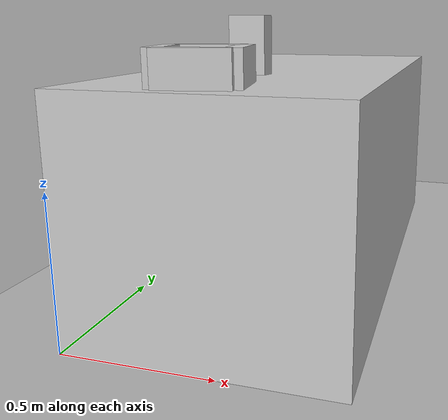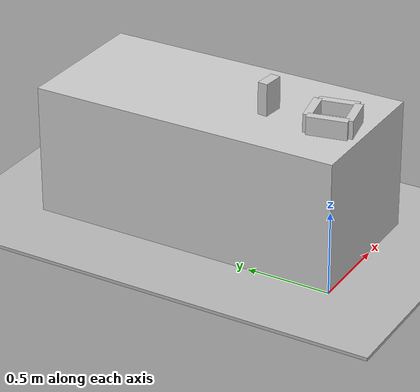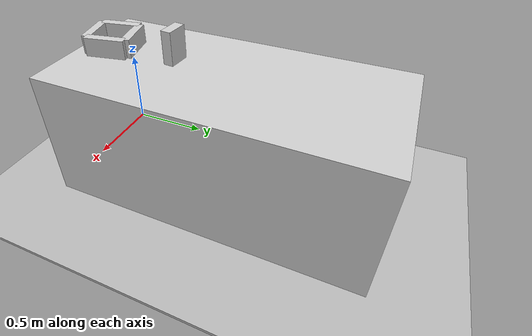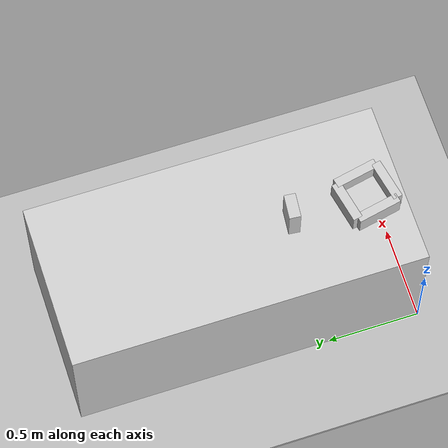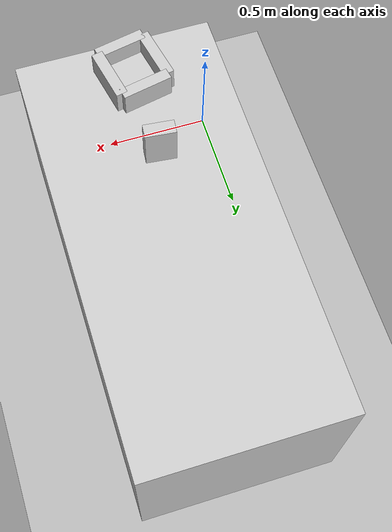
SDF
<?xml version="1.0"?>
<sdf version="1.6">
  <world name="boxing_world">
    <include>
      <pose>0 0 0 0 0 0</pose>
      <name>floor</name>
      <uri>model://floor</uri>
    </include>
    <include>
      <pose>0.44 0.94 0 0 0 0</pose>
      <name>table</name>
      <uri>model://table</uri>
    </include>
    <include>
      <pose>0.4 0.2 0.79 0 0 0.2</pose>
      <name>cardboard_box</name>
      <uri>model://cardboard_box</uri>
    </include>
    <include>
      <pose>0.4 0.6 0.79 0 0 -0.1</pose>
      <name>rice1</name>
      <uri>model://rice_box</uri>
    </include>
    <light type="directional" name="sun">
      <cast_shadows>true</cast_shadows>
      <pose>0 0 10 0 0 0</pose>
      <diffuse>0.8 0.8 0.8 1</diffuse>
      <specular>0.2 0.2 0.2 1</specular>
      <direction>0.5 0.1 -0.9</direction>
      <attenuation>
        <range>1000</range>
        <constant>0.9</constant>
        <linear>0.01</linear>
        <quadratic>0.001</quadratic>
      </attenuation>
    </light>
    <physics type="ode">
      <real_time_update_rate>333.0</real_time_update_rate>
      <max_step_size>0.003</max_step_size>
      <ode>
        <solver>
          <type>quick</type>
          <iters>100</iters>
        </solver>
        <constraints>
          <cfm>0.0001</cfm>
        </constraints>
      </ode>
    </physics>
  </world>
</sdf>

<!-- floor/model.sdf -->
<sdf version="1.6">
  <model name="floor">
    <link name="1_link">
      <collision name="1_col">
        <geometry>
          <box>
            <size>200 200 0.02</size>
          </box>
        </geometry>
      </collision>
      <visual name="1_vis">
        <geometry>
          <box>
            <size>200 200 0.02</size>
          </box>
        </geometry>
      </visual>
      <pose>0 0 -0.01 0 0 0</pose>
    </link>
    <static>true</static>
  </model>
</sdf>

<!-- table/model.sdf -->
<sdf version="1.6">
  <model name="table">
    <link name="1_link">
      <collision name="1_col">
        <geometry>
          <box>
            <size>0.88 1.88 0.79</size>
          </box>
        </geometry>
      </collision>
      <visual name="1_vis">
        <geometry>
          <box>
            <size>0.88 1.88 0.79</size>
          </box>
        </geometry>
        <material>
          <ambient>0.8 0.8 0.8 1</ambient>
        </material>
      </visual>
      <pose>0 0 0.395 0 0 0</pose>
    </link>
    <static>true</static>
  </model>
</sdf>

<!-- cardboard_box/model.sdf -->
<sdf version="1.6">
  <model name="cardboard_box">
    <link name="1_link">
      <collision name="1_col">
        <geometry>
          <box>
            <size>0.22 0.235 0.05</size>
          </box>
        </geometry>
      </collision>
      <visual name="1_vis">
        <geometry>
          <box>
            <size>0.22 0.235 0.05</size>
          </box>
        </geometry>
        <material>
          <ambient>0.8 0.8 0.8 1</ambient>
        </material>
      </visual>
      <pose>0 0 0.0025 0 0 0</pose>
    </link>
    <link name="2_link">
      <collision name="2_col">
        <geometry>
          <box>
            <size>0.22 0.05 0.11</size>
          </box>
        </geometry>
      </collision>
      <visual name="2_vis">
        <geometry>
          <box>
            <size>0.22 0.05 0.11</size>
          </box>
        </geometry>
        <material>
          <ambient>0.8 0.8 0.8 1</ambient>
        </material>
      </visual>
      <pose>0 -0.1175 0.055 0 0 0</pose>
    </link>
    <link name="3_link">
      <collision name="3_col">
        <geometry>
          <box>
            <size>0.22 0.05 0.11</size>
          </box>
        </geometry>
      </collision>
      <visual name="3_vis">
        <geometry>
          <box>
            <size>0.22 0.05 0.11</size>
          </box>
        </geometry>
        <material>
          <ambient>0.8 0.8 0.8 1</ambient>
        </material>
      </visual>
      <pose>0 0.1175 0.055 0 0 0</pose>
    </link>
    <link name="4_link">
      <collision name="4_col">
        <geometry>
          <box>
            <size>0.05 0.235 0.11</size>
          </box>
        </geometry>
      </collision>
      <visual name="4_vis">
        <geometry>
          <box>
            <size>0.05 0.235 0.11</size>
          </box>
        </geometry>
        <material>
          <ambient>0.8 0.8 0.8 1</ambient>
        </material>
      </visual>
      <pose>-0.11 0 0.055 0 0 0</pose>
    </link>
    <link name="5_link">
      <collision name="5_col">
        <geometry>
          <box>
            <size>0.05 0.235 0.11</size>
          </box>
        </geometry>
      </collision>
      <visual name="5_vis">
        <geometry>
          <box>
            <size>0.05 0.235 0.11</size>
          </box>
        </geometry>
        <material>
          <ambient>0.8 0.8 0.8 1</ambient>
        </material>
      </visual>
      <pose>0.11 0 0.055 0 0 0</pose>
    </link>
    <link name="on_top_of">
      <virtual_volume name="on_top_of_vv">
        <geometry>
          <box>
            <size>0.22 0.235 0.4</size>
          </box>
        </geometry>
        <pose>0.0 0.0 0.42 0 0 0</pose>
      </virtual_volume>
    </link>
    <link name="in">
      <virtual_volume name="in_vv">
        <geometry>
          <box>
            <size>0.22 0.235 0.22</size>
          </box>
        </geometry>
        <pose>0.0 0.0 0.11 0 0 0</pose>
      </virtual_volume>
    </link>
    <link name="wall1">
      <virtual_volume name="wall1_vv">
        <geometry>
          <box>
            <size>0.22 0.05 0.11</size>
          </box>
        </geometry>
        <pose>0 0.1175 0.055 0 0 0</pose>
      </virtual_volume>
    </link>
    <static>true</static>
  </model>
</sdf>

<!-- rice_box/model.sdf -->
<sdf version="1.6">
  <model name="cardboard_box">
    <link name="1_link">
      <collision name="1_col">
        <geometry>
          <box>
            <size>0.13 0.06 0.195</size>
          </box>
        </geometry>
      </collision>
      <visual name="1_vis">
        <geometry>
          <box>
            <size>0.13 0.06 0.195</size>
          </box>
        </geometry>
        <material>
          <ambient>0.8 0.8 0.8 1</ambient>
        </material>
      </visual>
      <pose>0 0 0.0975 0 0 0</pose>
    </link>
    <link name="wall1">
      <virtual_volume name="wall1_vv">
        <geometry>
          <box>
            <size>0.13 0.005 0.195</size>
          </box>
        </geometry>
        <pose>0.0 -0.03 0.0975 0 0 0</pose>
      </virtual_volume>
    </link>
    <static>true</static>
  </model>
</sdf>
